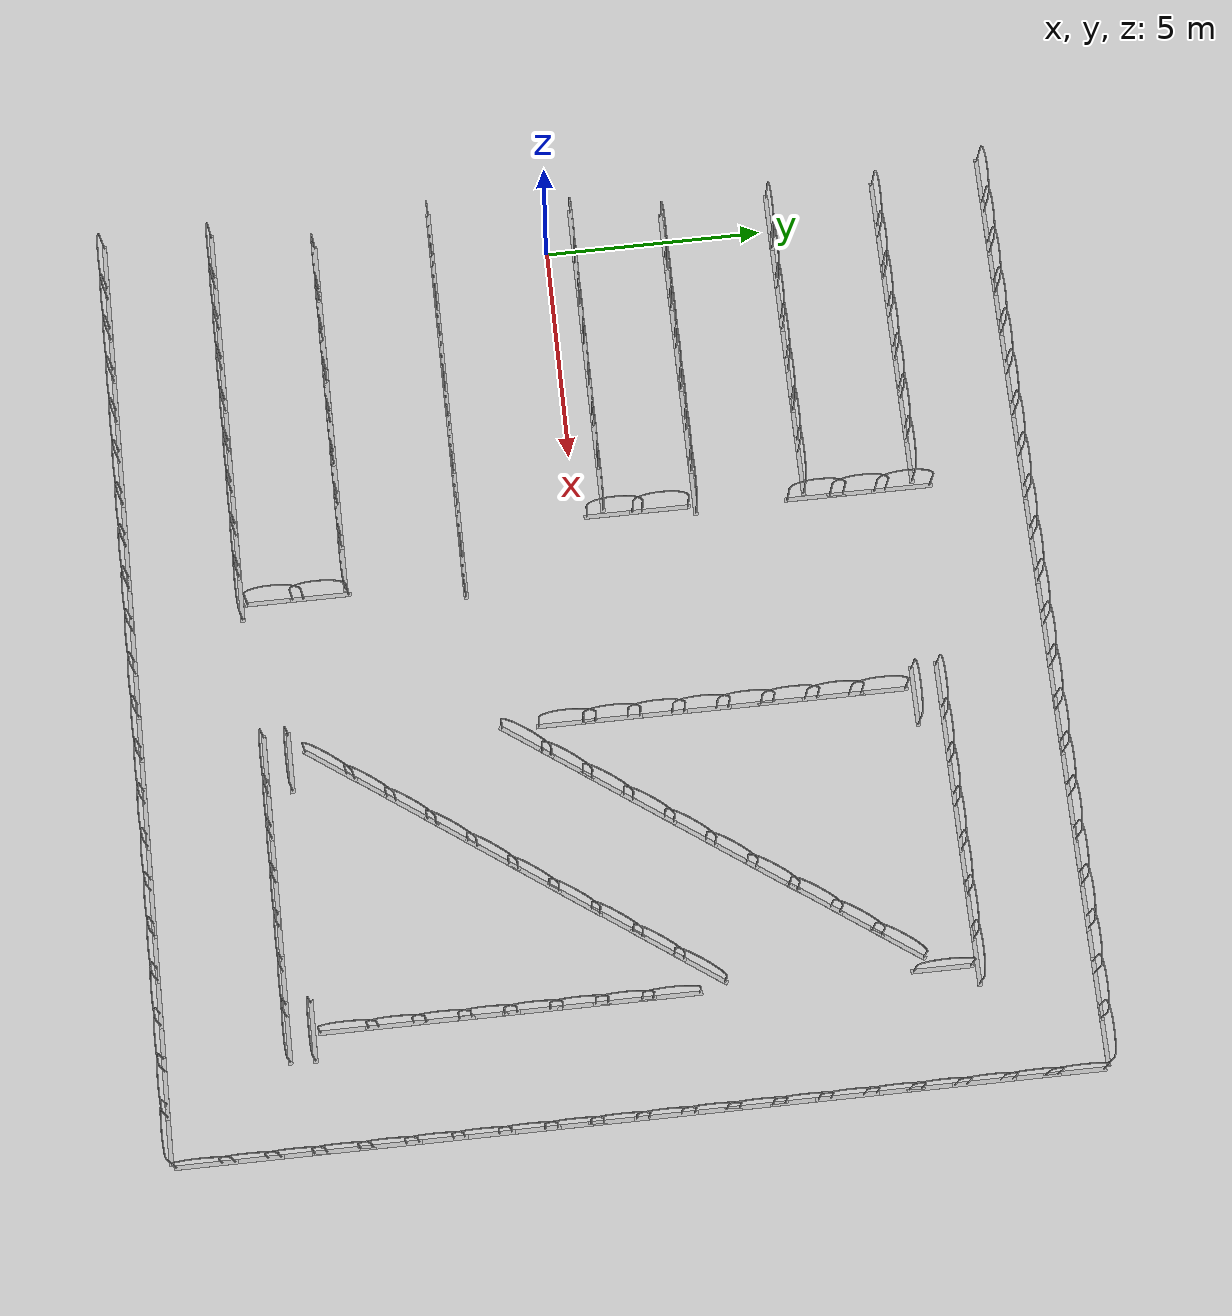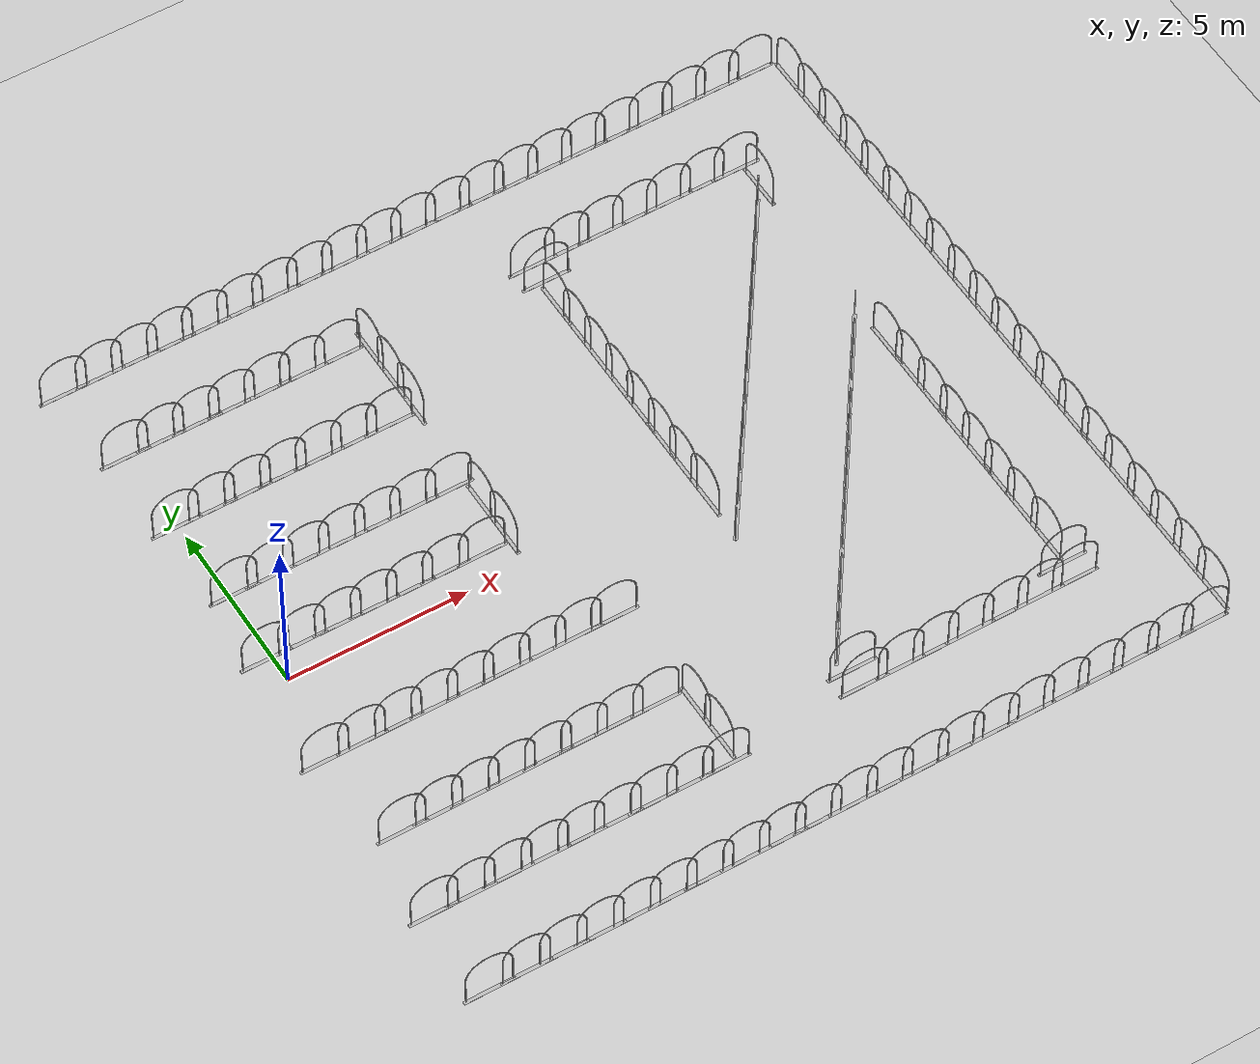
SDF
<sdf version="1.6">
 <world name="racetrack_world">
  <model name="ground_plane">
   <static>true</static>
   <link name="link">
    <collision name="collision"><geometry><plane><normal>0 0 1</normal></plane></geometry></collision>
    <visual name="visual">
     <geometry><plane><normal>0 0 1</normal><size>100 100</size></plane></geometry>
     <material>
      <ambient>0.8 0.8 0.8 1</ambient>
      <diffuse>0.8 0.8 0.8 1</diffuse>
      <specular>0.8 0.8 0.8 1</specular>
     </material>
    </visual>
   </link>
  </model>
  <include>
   <name>model_27</name>
   <uri>../models/straw_bale/model.sdf</uri>
   <pose>-0.5 10.25 0.25 0 0 -0.0</pose>
  </include>
  <include>
   <name>model_28</name>
   <uri>../models/straw_bale/model.sdf</uri>
   <pose>0.5 10.25 0.25 0 0 -0.0</pose>
  </include>
  <include>
   <name>model_29</name>
   <uri>../models/straw_bale/model.sdf</uri>
   <pose>1.5 10.25 0.25 0 0 -0.0</pose>
  </include>
  <include>
   <name>model_30</name>
   <uri>../models/straw_bale/model.sdf</uri>
   <pose>2.5 10.25 0.25 0 0 -0.0</pose>
  </include>
  <include>
   <name>model_31</name>
   <uri>../models/straw_bale/model.sdf</uri>
   <pose>3.5 10.25 0.25 0 0 -0.0</pose>
  </include>
  <include>
   <name>model_32</name>
   <uri>../models/straw_bale/model.sdf</uri>
   <pose>4.5 10.25 0.25 0 0 -0.0</pose>
  </include>
  <include>
   <name>model_33</name>
   <uri>../models/straw_bale/model.sdf</uri>
   <pose>5.5 10.25 0.25 0 0 -0.0</pose>
  </include>
  <include>
   <name>model_34</name>
   <uri>../models/straw_bale/model.sdf</uri>
   <pose>6.5 10.25 0.25 0 0 -0.0</pose>
  </include>
  <include>
   <name>model_35</name>
   <uri>../models/straw_bale/model.sdf</uri>
   <pose>7.5 10.25 0.25 0 0 -0.0</pose>
  </include>
  <include>
   <name>model_36</name>
   <uri>../models/straw_bale/model.sdf</uri>
   <pose>8.5 10.25 0.25 0 0 -0.0</pose>
  </include>
  <include>
   <name>model_37</name>
   <uri>../models/straw_bale/model.sdf</uri>
   <pose>9.5 10.25 0.25 0 0 -0.0</pose>
  </include>
  <include>
   <name>model_38</name>
   <uri>../models/straw_bale/model.sdf</uri>
   <pose>10.5 10.25 0.25 0 0 -0.0</pose>
  </include>
  <include>
   <name>model_39</name>
   <uri>../models/straw_bale/model.sdf</uri>
   <pose>11.5 10.25 0.25 0 0 -0.0</pose>
  </include>
  <include>
   <name>model_40</name>
   <uri>../models/straw_bale/model.sdf</uri>
   <pose>12.5 10.25 0.25 0 0 -0.0</pose>
  </include>
  <include>
   <name>model_41</name>
   <uri>../models/straw_bale/model.sdf</uri>
   <pose>13.5 10.25 0.25 0 0 -0.0</pose>
  </include>
  <include>
   <name>model_42</name>
   <uri>../models/straw_bale/model.sdf</uri>
   <pose>14.5 10.25 0.25 0 0 -0.0</pose>
  </include>
  <include>
   <name>model_43</name>
   <uri>../models/straw_bale/model.sdf</uri>
   <pose>15.5 10.25 0.25 0 0 -0.0</pose>
  </include>
  <include>
   <name>model_44</name>
   <uri>../models/straw_bale/model.sdf</uri>
   <pose>16.5 10.25 0.25 0 0 -0.0</pose>
  </include>
  <include>
   <name>model_45</name>
   <uri>../models/straw_bale/model.sdf</uri>
   <pose>17.5 10.25 0.25 0 0 -0.0</pose>
  </include>
  <include>
   <name>model_46</name>
   <uri>../models/straw_bale/model.sdf</uri>
   <pose>18.5 10.25 0.25 0 0 -0.0</pose>
  </include>
  <include>
   <name>model_47</name>
   <uri>../models/straw_bale/model.sdf</uri>
   <pose>19.5 10.25 0.25 0 0 -0.0</pose>
  </include>
  <include>
   <name>model_79</name>
   <uri>../models/straw_bale/model.sdf</uri>
   <pose>-0.5 -10.25 0.25 0 0 -0.0</pose>
  </include>
  <include>
   <name>model_80</name>
   <uri>../models/straw_bale/model.sdf</uri>
   <pose>0.5 -10.25 0.25 0 0 -0.0</pose>
  </include>
  <include>
   <name>model_81</name>
   <uri>../models/straw_bale/model.sdf</uri>
   <pose>1.5 -10.25 0.25 0 0 -0.0</pose>
  </include>
  <include>
   <name>model_82</name>
   <uri>../models/straw_bale/model.sdf</uri>
   <pose>2.5 -10.25 0.25 0 0 -0.0</pose>
  </include>
  <include>
   <name>model_83</name>
   <uri>../models/straw_bale/model.sdf</uri>
   <pose>3.5 -10.25 0.25 0 0 -0.0</pose>
  </include>
  <include>
   <name>model_84</name>
   <uri>../models/straw_bale/model.sdf</uri>
   <pose>4.5 -10.25 0.25 0 0 -0.0</pose>
  </include>
  <include>
   <name>model_85</name>
   <uri>../models/straw_bale/model.sdf</uri>
   <pose>5.5 -10.25 0.25 0 0 -0.0</pose>
  </include>
  <include>
   <name>model_86</name>
   <uri>../models/straw_bale/model.sdf</uri>
   <pose>6.5 -10.25 0.25 0 0 -0.0</pose>
  </include>
  <include>
   <name>model_87</name>
   <uri>../models/straw_bale/model.sdf</uri>
   <pose>7.5 -10.25 0.25 0 0 -0.0</pose>
  </include>
  <include>
   <name>model_88</name>
   <uri>../models/straw_bale/model.sdf</uri>
   <pose>8.5 -10.25 0.25 0 0 -0.0</pose>
  </include>
  <include>
   <name>model_89</name>
   <uri>../models/straw_bale/model.sdf</uri>
   <pose>9.5 -10.25 0.25 0 0 -0.0</pose>
  </include>
  <include>
   <name>model_90</name>
   <uri>../models/straw_bale/model.sdf</uri>
   <pose>10.5 -10.25 0.25 0 0 -0.0</pose>
  </include>
  <include>
   <name>model_91</name>
   <uri>../models/straw_bale/model.sdf</uri>
   <pose>11.5 -10.25 0.25 0 0 -0.0</pose>
  </include>
  <include>
   <name>model_92</name>
   <uri>../models/straw_bale/model.sdf</uri>
   <pose>12.5 -10.25 0.25 0 0 -0.0</pose>
  </include>
  <include>
   <name>model_93</name>
   <uri>../models/straw_bale/model.sdf</uri>
   <pose>13.5 -10.25 0.25 0 0 -0.0</pose>
  </include>
  <include>
   <name>model_94</name>
   <uri>../models/straw_bale/model.sdf</uri>
   <pose>14.5 -10.25 0.25 0 0 -0.0</pose>
  </include>
  <include>
   <name>model_95</name>
   <uri>../models/straw_bale/model.sdf</uri>
   <pose>15.5 -10.25 0.25 0 0 -0.0</pose>
  </include>
  <include>
   <name>model_96</name>
   <uri>../models/straw_bale/model.sdf</uri>
   <pose>16.5 -10.25 0.25 0 0 -0.0</pose>
  </include>
  <include>
   <name>model_97</name>
   <uri>../models/straw_bale/model.sdf</uri>
   <pose>17.5 -10.25 0.25 0 0 -0.0</pose>
  </include>
  <include>
   <name>model_98</name>
   <uri>../models/straw_bale/model.sdf</uri>
   <pose>18.5 -10.25 0.25 0 0 -0.0</pose>
  </include>
  <include>
   <name>model_99</name>
   <uri>../models/straw_bale/model.sdf</uri>
   <pose>19.5 -10.25 0.25 0 0 -0.0</pose>
  </include>
  <include>
   <name>model_100</name>
   <uri>../models/straw_bale/model.sdf</uri>
   <pose>20.25 9.5 0.25 0 0 1.5707963267948966</pose>
  </include>
  <include>
   <name>model_101</name>
   <uri>../models/straw_bale/model.sdf</uri>
   <pose>11.3125 6.299999999999999 0.25 0 0 1.5707963267948966</pose>
  </include>
  <include>
   <name>model_102</name>
   <uri>../models/straw_bale/model.sdf</uri>
   <pose>11.3125 5.299999999999999 0.25 0 0 1.5707963267948966</pose>
  </include>
  <include>
   <name>model_103</name>
   <uri>../models/straw_bale/model.sdf</uri>
   <pose>11.3125 4.299999999999999 0.25 0 0 1.5707963267948966</pose>
  </include>
  <include>
   <name>model_104</name>
   <uri>../models/straw_bale/model.sdf</uri>
   <pose>11.3125 3.299999999999999 0.25 0 0 1.5707963267948966</pose>
  </include>
  <include>
   <name>model_105</name>
   <uri>../models/straw_bale/model.sdf</uri>
   <pose>11.3125 2.299999999999999 0.25 0 0 1.5707963267948966</pose>
  </include>
  <include>
   <name>model_106</name>
   <uri>../models/straw_bale/model.sdf</uri>
   <pose>11.3125 1.3000000000000007 0.25 0 0 1.5707963267948966</pose>
  </include>
  <include>
   <name>model_107</name>
   <uri>../models/straw_bale/model.sdf</uri>
   <pose>11.3125 0.3000000000000007 0.25 0 0 1.5707963267948966</pose>
  </include>
  <include>
   <name>model_108</name>
   <uri>../models/straw_bale/model.sdf</uri>
   <pose>11.3125 -0.6999999999999993 0.25 0 0 1.5707963267948966</pose>
  </include>
  <include>
   <name>model_109</name>
   <uri>../models/straw_bale/model.sdf</uri>
   <pose>20.25 -4.5 0.25 0 0 1.5707963267948966</pose>
  </include>
  <include>
   <name>model_110</name>
   <uri>../models/straw_bale/model.sdf</uri>
   <pose>20.25 -5.5 0.25 0 0 1.5707963267948966</pose>
  </include>
  <include>
   <name>model_111</name>
   <uri>../models/straw_bale/model.sdf</uri>
   <pose>20.25 -6.5 0.25 0 0 1.5707963267948966</pose>
  </include>
  <include>
   <name>model_112</name>
   <uri>../models/straw_bale/model.sdf</uri>
   <pose>20.25 -7.5 0.25 0 0 1.5707963267948966</pose>
  </include>
  <include>
   <name>model_113</name>
   <uri>../models/straw_bale/model.sdf</uri>
   <pose>20.25 -8.5 0.25 0 0 1.5707963267948966</pose>
  </include>
  <include>
   <name>model_114</name>
   <uri>../models/straw_bale/model.sdf</uri>
   <pose>20.25 -9.5 0.25 0 0 1.5707963267948966</pose>
  </include>
  <include>
   <name>model_146</name>
   <uri>../models/straw_bale/model.sdf</uri>
   <pose>17.0375 6.024999999999999 0.25 0 0 0.9599310885968813</pose>
  </include>
  <include>
   <name>model_195</name>
   <uri>../models/straw_bale/model.sdf</uri>
   <pose>0.07500000000000284 2.7249999999999996 0.25 0 0 3.141592653589793</pose>
  </include>
  <include>
   <name>model_197</name>
   <uri>../models/straw_bale/model.sdf</uri>
   <pose>6.075000000000003 2.7249999999999996 0.25 0 0 3.141592653589793</pose>
  </include>
  <include>
   <name>model_198</name>
   <uri>../models/straw_bale/model.sdf</uri>
   <pose>5.075000000000003 2.7249999999999996 0.25 0 0 3.141592653589793</pose>
  </include>
  <include>
   <name>model_199</name>
   <uri>../models/straw_bale/model.sdf</uri>
   <pose>4.075000000000003 2.7249999999999996 0.25 0 0 3.141592653589793</pose>
  </include>
  <include>
   <name>model_200</name>
   <uri>../models/straw_bale/model.sdf</uri>
   <pose>3.075000000000003 2.7249999999999996 0.25 0 0 3.141592653589793</pose>
  </include>
  <include>
   <name>model_201</name>
   <uri>../models/straw_bale/model.sdf</uri>
   <pose>2.075000000000003 2.7249999999999996 0.25 0 0 3.141592653589793</pose>
  </include>
  <include>
   <name>model_202</name>
   <uri>../models/straw_bale/model.sdf</uri>
   <pose>1.0750000000000028 2.7249999999999996 0.25 0 0 3.141592653589793</pose>
  </include>
  <include>
   <name>model_205</name>
   <uri>../models/straw_bale/model.sdf</uri>
   <pose>4.75 0.625 0.25 0 0 3.141592653589793</pose>
  </include>
  <include>
   <name>model_206</name>
   <uri>../models/straw_bale/model.sdf</uri>
   <pose>3.75 0.625 0.25 0 0 3.141592653589793</pose>
  </include>
  <include>
   <name>model_207</name>
   <uri>../models/straw_bale/model.sdf</uri>
   <pose>2.75 0.625 0.25 0 0 3.141592653589793</pose>
  </include>
  <include>
   <name>model_208</name>
   <uri>../models/straw_bale/model.sdf</uri>
   <pose>1.75 0.625 0.25 0 0 3.141592653589793</pose>
  </include>
  <include>
   <name>model_209</name>
   <uri>../models/straw_bale/model.sdf</uri>
   <pose>0.75 0.625 0.25 0 0 3.141592653589793</pose>
  </include>
  <include>
   <name>model_210</name>
   <uri>../models/straw_bale/model.sdf</uri>
   <pose>-0.25 0.625 0.25 0 0 3.141592653589793</pose>
  </include>
  <include>
   <name>model_211</name>
   <uri>../models/straw_bale/model.sdf</uri>
   <pose>1.5 -2.6750000000000007 0.25 0 0 3.141592653589793</pose>
  </include>
  <include>
   <name>model_212</name>
   <uri>../models/straw_bale/model.sdf</uri>
   <pose>0.5 -2.6750000000000007 0.25 0 0 3.141592653589793</pose>
  </include>
  <include>
   <name>model_213</name>
   <uri>../models/straw_bale/model.sdf</uri>
   <pose>-0.5 -2.6750000000000007 0.25 0 0 3.141592653589793</pose>
  </include>
  <include>
   <name>model_217</name>
   <uri>../models/straw_bale/model.sdf</uri>
   <pose>7.5 -2.6750000000000007 0.25 0 0 3.141592653589793</pose>
  </include>
  <include>
   <name>model_218</name>
   <uri>../models/straw_bale/model.sdf</uri>
   <pose>6.5 -2.6750000000000007 0.25 0 0 3.141592653589793</pose>
  </include>
  <include>
   <name>model_219</name>
   <uri>../models/straw_bale/model.sdf</uri>
   <pose>5.5 -2.6750000000000007 0.25 0 0 3.141592653589793</pose>
  </include>
  <include>
   <name>model_220</name>
   <uri>../models/straw_bale/model.sdf</uri>
   <pose>4.5 -2.6750000000000007 0.25 0 0 3.141592653589793</pose>
  </include>
  <include>
   <name>model_221</name>
   <uri>../models/straw_bale/model.sdf</uri>
   <pose>3.5 -2.6750000000000007 0.25 0 0 3.141592653589793</pose>
  </include>
  <include>
   <name>model_222</name>
   <uri>../models/straw_bale/model.sdf</uri>
   <pose>2.5 -2.6750000000000007 0.25 0 0 3.141592653589793</pose>
  </include>
  <include>
   <name>model_223</name>
   <uri>../models/straw_bale/model.sdf</uri>
   <pose>1.0250000000000021 -5.375 0.25 0 0 3.141592653589793</pose>
  </include>
  <include>
   <name>model_224</name>
   <uri>../models/straw_bale/model.sdf</uri>
   <pose>0.02500000000000213 -5.375 0.25 0 0 3.141592653589793</pose>
  </include>
  <include>
   <name>model_228</name>
   <uri>../models/straw_bale/model.sdf</uri>
   <pose>5.775000000000002 0.625 0.25 0 0 3.141592653589793</pose>
  </include>
  <include>
   <name>model_229</name>
   <uri>../models/straw_bale/model.sdf</uri>
   <pose>7.024999999999999 -5.375 0.25 0 0 3.141592653589793</pose>
  </include>
  <include>
   <name>model_230</name>
   <uri>../models/straw_bale/model.sdf</uri>
   <pose>6.025000000000006 -5.375 0.25 0 0 3.141592653589793</pose>
  </include>
  <include>
   <name>model_231</name>
   <uri>../models/straw_bale/model.sdf</uri>
   <pose>5.025000000000002 -5.375 0.25 0 0 3.141592653589793</pose>
  </include>
  <include>
   <name>model_232</name>
   <uri>../models/straw_bale/model.sdf</uri>
   <pose>4.025000000000002 -5.375 0.25 0 0 3.141592653589793</pose>
  </include>
  <include>
   <name>model_233</name>
   <uri>../models/straw_bale/model.sdf</uri>
   <pose>3.025000000000002 -5.375 0.25 0 0 3.141592653589793</pose>
  </include>
  <include>
   <name>model_234</name>
   <uri>../models/straw_bale/model.sdf</uri>
   <pose>2.025000000000002 -5.375 0.25 0 0 3.141592653589793</pose>
  </include>
  <include>
   <name>model_235</name>
   <uri>../models/straw_bale/model.sdf</uri>
   <pose>1.5 -7.75 0.25 0 0 3.141592653589793</pose>
  </include>
  <include>
   <name>model_236</name>
   <uri>../models/straw_bale/model.sdf</uri>
   <pose>0.5 -7.75 0.25 0 0 3.141592653589793</pose>
  </include>
  <include>
   <name>model_237</name>
   <uri>../models/straw_bale/model.sdf</uri>
   <pose>-0.5 -7.75 0.25 0 0 3.141592653589793</pose>
  </include>
  <include>
   <name>model_241</name>
   <uri>../models/straw_bale/model.sdf</uri>
   <pose>7.5 -7.75 0.25 0 0 3.141592653589793</pose>
  </include>
  <include>
   <name>model_242</name>
   <uri>../models/straw_bale/model.sdf</uri>
   <pose>6.5 -7.75 0.25 0 0 3.141592653589793</pose>
  </include>
  <include>
   <name>model_243</name>
   <uri>../models/straw_bale/model.sdf</uri>
   <pose>5.5 -7.75 0.25 0 0 3.141592653589793</pose>
  </include>
  <include>
   <name>model_244</name>
   <uri>../models/straw_bale/model.sdf</uri>
   <pose>4.5 -7.75 0.25 0 0 3.141592653589793</pose>
  </include>
  <include>
   <name>model_245</name>
   <uri>../models/straw_bale/model.sdf</uri>
   <pose>3.5 -7.75 0.25 0 0 3.141592653589793</pose>
  </include>
  <include>
   <name>model_246</name>
   <uri>../models/straw_bale/model.sdf</uri>
   <pose>2.5 -7.75 0.25 0 0 3.141592653589793</pose>
  </include>
  <include>
   <name>model_249</name>
   <uri>../models/straw_bale/model.sdf</uri>
   <pose>7.800000000000004 -5.950000000000003 0.25 0 0 1.5707963267948966</pose>
  </include>
  <include>
   <name>model_250</name>
   <uri>../models/straw_bale/model.sdf</uri>
   <pose>7.800000000000004 -6.975000000000001 0.25 0 0 1.5707963267948966</pose>
  </include>
  <include>
   <name>model_251</name>
   <uri>../models/straw_bale/model.sdf</uri>
   <pose>6.550000000000004 0.875 0.25 0 0 1.5707963267948966</pose>
  </include>
  <include>
   <name>model_252</name>
   <uri>../models/straw_bale/model.sdf</uri>
   <pose>6.550000000000004 1.9249999999999972 0.25 0 0 1.5707963267948966</pose>
  </include>
  <include>
   <name>model_253</name>
   <uri>../models/straw_bale/model.sdf</uri>
   <pose>17.6875 6.924999999999999 0.25 0 0 1.5707963267948966</pose>
  </include>
  <include>
   <name>model_254</name>
   <uri>../models/straw_bale/model.sdf</uri>
   <pose>16.4375 5.174999999999999 0.25 0 0 0.9599310885968813</pose>
  </include>
  <include>
   <name>model_255</name>
   <uri>../models/straw_bale/model.sdf</uri>
   <pose>15.837500000000006 4.324999999999999 0.25 0 0 0.9599310885968813</pose>
  </include>
  <include>
   <name>model_256</name>
   <uri>../models/straw_bale/model.sdf</uri>
   <pose>15.237500000000004 3.4499999999999993 0.25 0 0 0.9599310885968813</pose>
  </include>
  <include>
   <name>model_257</name>
   <uri>../models/straw_bale/model.sdf</uri>
   <pose>14.637500000000003 2.5999999999999996 0.25 0 0 0.9599310885968813</pose>
  </include>
  <include>
   <name>model_258</name>
   <uri>../models/straw_bale/model.sdf</uri>
   <pose>14.037500000000001 1.75 0.25 0 0 0.9599310885968813</pose>
  </include>
  <include>
   <name>model_259</name>
   <uri>../models/straw_bale/model.sdf</uri>
   <pose>13.4375 0.8999999999999986 0.25 0 0 0.9599310885968813</pose>
  </include>
  <include>
   <name>model_260</name>
   <uri>../models/straw_bale/model.sdf</uri>
   <pose>12.837499999999999 0.05000000000000071 0.25 0 0 0.9599310885968813</pose>
  </include>
  <include>
   <name>model_261</name>
   <uri>../models/straw_bale/model.sdf</uri>
   <pose>12.237500000000004 -0.8000000000000007 0.25 0 0 0.9599310885968813</pose>
  </include>
  <include>
   <name>model_262</name>
   <uri>../models/straw_bale/model.sdf</uri>
   <pose>11.637500000000003 -1.6500000000000021 0.25 0 0 0.9599310885968813</pose>
  </include>
  <include>
   <name>model_263</name>
   <uri>../models/straw_bale/model.sdf</uri>
   <pose>17.112500000000004 1.625 0.25 0 0 0.9599310885968813</pose>
  </include>
  <include>
   <name>model_264</name>
   <uri>../models/straw_bale/model.sdf</uri>
   <pose>16.512500000000003 0.7749999999999986 0.25 0 0 0.9599310885968813</pose>
  </include>
  <include>
   <name>model_265</name>
   <uri>../models/straw_bale/model.sdf</uri>
   <pose>15.912500000000001 -0.07499999999999929 0.25 0 0 0.9599310885968813</pose>
  </include>
  <include>
   <name>model_266</name>
   <uri>../models/straw_bale/model.sdf</uri>
   <pose>15.3125 -0.9499999999999993 0.25 0 0 0.9599310885968813</pose>
  </include>
  <include>
   <name>model_267</name>
   <uri>../models/straw_bale/model.sdf</uri>
   <pose>14.712500000000006 -1.8000000000000007 0.25 0 0 0.9599310885968813</pose>
  </include>
  <include>
   <name>model_268</name>
   <uri>../models/straw_bale/model.sdf</uri>
   <pose>14.112500000000004 -2.650000000000002 0.25 0 0 0.9599310885968813</pose>
  </include>
  <include>
   <name>model_269</name>
   <uri>../models/straw_bale/model.sdf</uri>
   <pose>13.512500000000003 -3.5 0.25 0 0 0.9599310885968813</pose>
  </include>
  <include>
   <name>model_270</name>
   <uri>../models/straw_bale/model.sdf</uri>
   <pose>12.912500000000001 -4.350000000000001 0.25 0 0 0.9599310885968813</pose>
  </include>
  <include>
   <name>model_271</name>
   <uri>../models/straw_bale/model.sdf</uri>
   <pose>12.3125 -5.200000000000003 0.25 0 0 0.9599310885968813</pose>
  </include>
  <include>
   <name>model_272</name>
   <uri>../models/straw_bale/model.sdf</uri>
   <pose>11.712499999999999 -6.075000000000003 0.25 0 0 0.9599310885968813</pose>
  </include>
  <include>
   <name>model_273</name>
   <uri>../models/straw_bale/model.sdf</uri>
   <pose>11.5625 -7.5 0.25 0 0 3.141592653589793</pose>
  </include>
  <include>
   <name>model_274</name>
   <uri>../models/straw_bale/model.sdf</uri>
   <pose>11.5625 -6.950000000000003 0.25 0 0 3.141592653589793</pose>
  </include>
  <include>
   <name>model_275</name>
   <uri>../models/straw_bale/model.sdf</uri>
   <pose>17.6625 0.9250000000000007 0.25 0 0 1.5707963267948966</pose>
  </include>
  <include>
   <name>model_276</name>
   <uri>../models/straw_bale/model.sdf</uri>
   <pose>12.587499999999999 -7.5 0.25 0 0 -0.0</pose>
  </include>
  <include>
   <name>model_277</name>
   <uri>../models/straw_bale/model.sdf</uri>
   <pose>13.587500000000006 -7.5 0.25 0 0 -0.0</pose>
  </include>
  <include>
   <name>model_278</name>
   <uri>../models/straw_bale/model.sdf</uri>
   <pose>14.587500000000006 -7.5 0.25 0 0 -0.0</pose>
  </include>
  <include>
   <name>model_279</name>
   <uri>../models/straw_bale/model.sdf</uri>
   <pose>15.587500000000006 -7.5 0.25 0 0 -0.0</pose>
  </include>
  <include>
   <name>model_280</name>
   <uri>../models/straw_bale/model.sdf</uri>
   <pose>16.587500000000006 -7.5 0.25 0 0 -0.0</pose>
  </include>
  <include>
   <name>model_281</name>
   <uri>../models/straw_bale/model.sdf</uri>
   <pose>17.587500000000006 -7.5 0.25 0 0 -0.0</pose>
  </include>
  <include>
   <name>model_282</name>
   <uri>../models/straw_bale/model.sdf</uri>
   <pose>17.6625 -0.10000000000000142 0.25 0 0 1.5707963267948966</pose>
  </include>
  <include>
   <name>model_283</name>
   <uri>../models/straw_bale/model.sdf</uri>
   <pose>17.6625 -1.1000000000000014 0.25 0 0 1.5707963267948966</pose>
  </include>
  <include>
   <name>model_284</name>
   <uri>../models/straw_bale/model.sdf</uri>
   <pose>17.6625 -2.1000000000000014 0.25 0 0 1.5707963267948966</pose>
  </include>
  <include>
   <name>model_285</name>
   <uri>../models/straw_bale/model.sdf</uri>
   <pose>17.6625 -3.1000000000000014 0.25 0 0 1.5707963267948966</pose>
  </include>
  <include>
   <name>model_286</name>
   <uri>../models/straw_bale/model.sdf</uri>
   <pose>17.6625 -4.100000000000001 0.25 0 0 1.5707963267948966</pose>
  </include>
  <include>
   <name>model_287</name>
   <uri>../models/straw_bale/model.sdf</uri>
   <pose>17.6625 -5.100000000000001 0.25 0 0 1.5707963267948966</pose>
  </include>
  <include>
   <name>model_288</name>
   <uri>../models/straw_bale/model.sdf</uri>
   <pose>17.6625 -6.150000000000002 0.25 0 0 1.5707963267948966</pose>
  </include>
  <include>
   <name>model_289</name>
   <uri>../models/straw_bale/model.sdf</uri>
   <pose>17.612500000000004 -6.950000000000003 0.25 0 0 -0.0</pose>
  </include>
  <include>
   <name>model_290</name>
   <uri>../models/straw_bale/model.sdf</uri>
   <pose>11.462499999999999 7.699999999999999 0.25 0 0 -0.0</pose>
  </include>
  <include>
   <name>model_291</name>
   <uri>../models/straw_bale/model.sdf</uri>
   <pose>12.462499999999999 7.699999999999999 0.25 0 0 -0.0</pose>
  </include>
  <include>
   <name>model_292</name>
   <uri>../models/straw_bale/model.sdf</uri>
   <pose>13.462500000000006 7.699999999999999 0.25 0 0 -0.0</pose>
  </include>
  <include>
   <name>model_293</name>
   <uri>../models/straw_bale/model.sdf</uri>
   <pose>14.462500000000006 7.699999999999999 0.25 0 0 -0.0</pose>
  </include>
  <include>
   <name>model_294</name>
   <uri>../models/straw_bale/model.sdf</uri>
   <pose>15.462500000000006 7.699999999999999 0.25 0 0 -0.0</pose>
  </include>
  <include>
   <name>model_295</name>
   <uri>../models/straw_bale/model.sdf</uri>
   <pose>16.462500000000006 7.699999999999999 0.25 0 0 -0.0</pose>
  </include>
  <include>
   <name>model_296</name>
   <uri>../models/straw_bale/model.sdf</uri>
   <pose>17.462500000000006 7.699999999999999 0.25 0 0 -0.0</pose>
  </include>
  <include>
   <name>model_297</name>
   <uri>../models/straw_bale/model.sdf</uri>
   <pose>20.25 0.5249999999999986 0.25 0 0 1.5707963267948966</pose>
  </include>
  <include>
   <name>model_298</name>
   <uri>../models/straw_bale/model.sdf</uri>
   <pose>20.25 -0.4750000000000014 0.25 0 0 1.5707963267948966</pose>
  </include>
  <include>
   <name>model_299</name>
   <uri>../models/straw_bale/model.sdf</uri>
   <pose>20.25 -1.4750000000000014 0.25 0 0 1.5707963267948966</pose>
  </include>
  <include>
   <name>model_300</name>
   <uri>../models/straw_bale/model.sdf</uri>
   <pose>20.25 -2.4750000000000014 0.25 0 0 1.5707963267948966</pose>
  </include>
  <include>
   <name>model_301</name>
   <uri>../models/straw_bale/model.sdf</uri>
   <pose>20.25 -3.4750000000000014 0.25 0 0 1.5707963267948966</pose>
  </include>
  <include>
   <name>model_302</name>
   <uri>../models/straw_bale/model.sdf</uri>
   <pose>20.25 5.5 0.25 0 0 1.5707963267948966</pose>
  </include>
  <include>
   <name>model_303</name>
   <uri>../models/straw_bale/model.sdf</uri>
   <pose>20.25 4.5 0.25 0 0 1.5707963267948966</pose>
  </include>
  <include>
   <name>model_304</name>
   <uri>../models/straw_bale/model.sdf</uri>
   <pose>20.25 3.5 0.25 0 0 1.5707963267948966</pose>
  </include>
  <include>
   <name>model_305</name>
   <uri>../models/straw_bale/model.sdf</uri>
   <pose>20.25 2.5 0.25 0 0 1.5707963267948966</pose>
  </include>
  <include>
   <name>model_306</name>
   <uri>../models/straw_bale/model.sdf</uri>
   <pose>20.25 1.5 0.25 0 0 1.5707963267948966</pose>
  </include>
  <include>
   <name>model_307</name>
   <uri>../models/straw_bale/model.sdf</uri>
   <pose>20.25 8.5 0.25 0 0 1.5707963267948966</pose>
  </include>
  <include>
   <name>model_308</name>
   <uri>../models/straw_bale/model.sdf</uri>
   <pose>20.25 7.5 0.25 0 0 1.5707963267948966</pose>
  </include>
  <include>
   <name>model_309</name>
   <uri>../models/straw_bale/model.sdf</uri>
   <pose>20.25 6.5 0.25 0 0 1.5707963267948966</pose>
  </include>
  <include>
   <name>model_310</name>
   <uri>../models/straw_bale/model.sdf</uri>
   <pose>11.512500000000003 7.125 0.25 0 0 3.141592653589793</pose>
  </include>
  <include>
   <name>model_329</name>
   <uri>../models/straw_bale/model.sdf</uri>
   <pose>3.8625000000000007 5.225 0.25 0 0 3.141592653589793</pose>
  </include>
  <include>
   <name>model_330</name>
   <uri>../models/straw_bale/model.sdf</uri>
   <pose>2.8625000000000007 5.225 0.25 0 0 3.141592653589793</pose>
  </include>
  <include>
   <name>model_331</name>
   <uri>../models/straw_bale/model.sdf</uri>
   <pose>1.8625000000000007 5.225 0.25 0 0 3.141592653589793</pose>
  </include>
  <include>
   <name>model_332</name>
   <uri>../models/straw_bale/model.sdf</uri>
   <pose>0.8625000000000007 5.225 0.25 0 0 3.141592653589793</pose>
  </include>
  <include>
   <name>model_333</name>
   <uri>../models/straw_bale/model.sdf</uri>
   <pose>-0.1374999999999993 5.225 0.25 0 0 3.141592653589793</pose>
  </include>
  <include>
   <name>model_335</name>
   <uri>../models/straw_bale/model.sdf</uri>
   <pose>5.862500000000001 5.225 0.25 0 0 3.141592653589793</pose>
  </include>
  <include>
   <name>model_336</name>
   <uri>../models/straw_bale/model.sdf</uri>
   <pose>4.862500000000001 5.225 0.25 0 0 3.141592653589793</pose>
  </include>
  <include>
   <name>model_337</name>
   <uri>../models/straw_bale/model.sdf</uri>
   <pose>6.625 5.475 0.25 0 0 1.5707963267948966</pose>
  </include>
  <include>
   <name>model_338</name>
   <uri>../models/straw_bale/model.sdf</uri>
   <pose>6.625 6.449999999999999 0.25 0 0 1.5707963267948966</pose>
  </include>
  <include>
   <name>model_339</name>
   <uri>../models/straw_bale/model.sdf</uri>
   <pose>6.625 7.475 0.25 0 0 1.5707963267948966</pose>
  </include>
  <include>
   <name>model_341</name>
   <uri>../models/straw_bale/model.sdf</uri>
   <pose>-0.16249999999999787 7.725 0.25 0 0 -0.0</pose>
  </include>
  <include>
   <name>model_342</name>
   <uri>../models/straw_bale/model.sdf</uri>
   <pose>0.8375000000000021 7.725 0.25 0 0 -0.0</pose>
  </include>
  <include>
   <name>model_343</name>
   <uri>../models/straw_bale/model.sdf</uri>
   <pose>1.8375000000000021 7.725 0.25 0 0 -0.0</pose>
  </include>
  <include>
   <name>model_344</name>
   <uri>../models/straw_bale/model.sdf</uri>
   <pose>2.837500000000002 7.725 0.25 0 0 -0.0</pose>
  </include>
  <include>
   <name>model_345</name>
   <uri>../models/straw_bale/model.sdf</uri>
   <pose>3.837500000000002 7.725 0.25 0 0 -0.0</pose>
  </include>
  <include>
   <name>model_346</name>
   <uri>../models/straw_bale/model.sdf</uri>
   <pose>4.837500000000002 7.725 0.25 0 0 -0.0</pose>
  </include>
  <include>
   <name>model_347</name>
   <uri>../models/straw_bale/model.sdf</uri>
   <pose>5.837500000000002 7.725 0.25 0 0 -0.0</pose>
  </include>
 </world>
</sdf>
